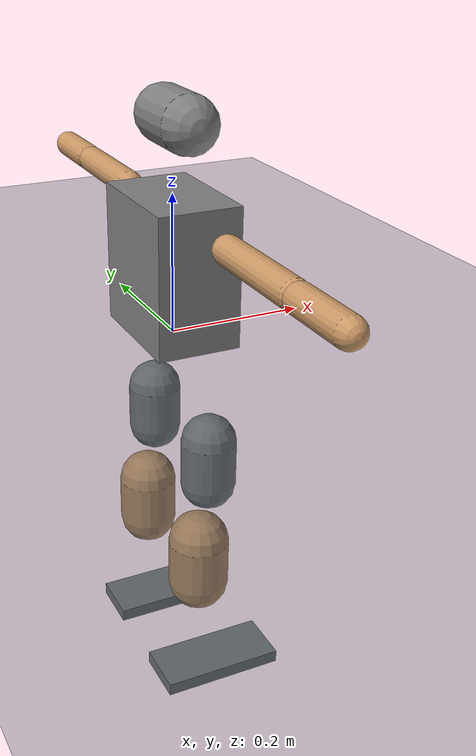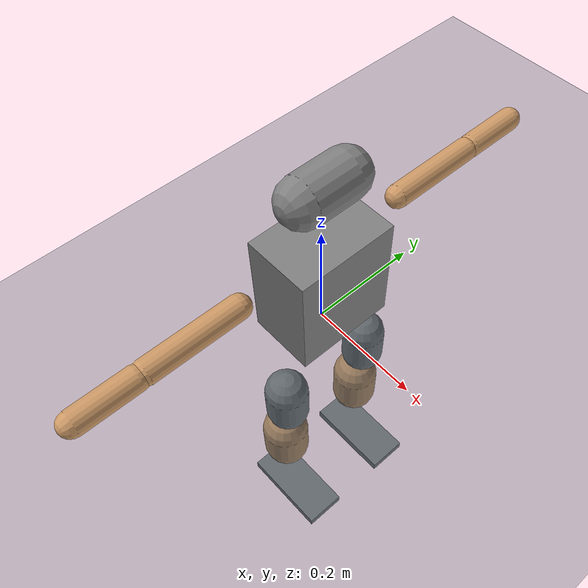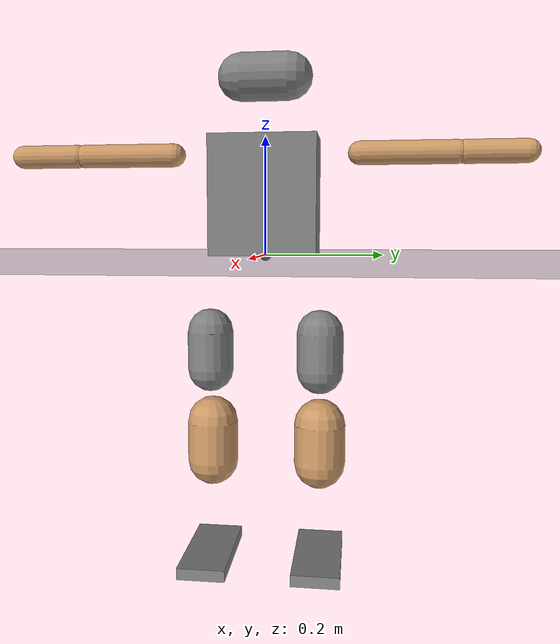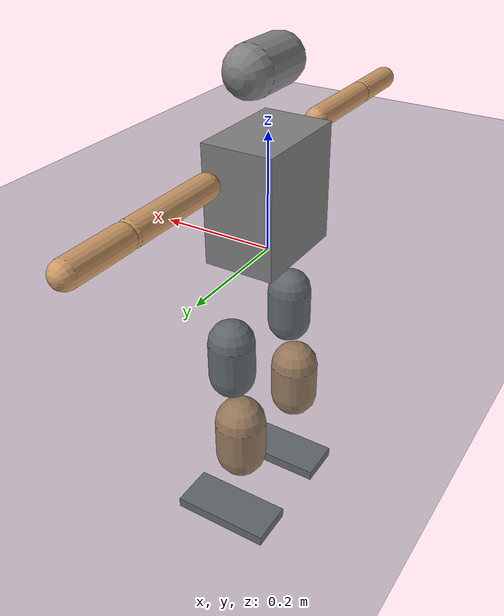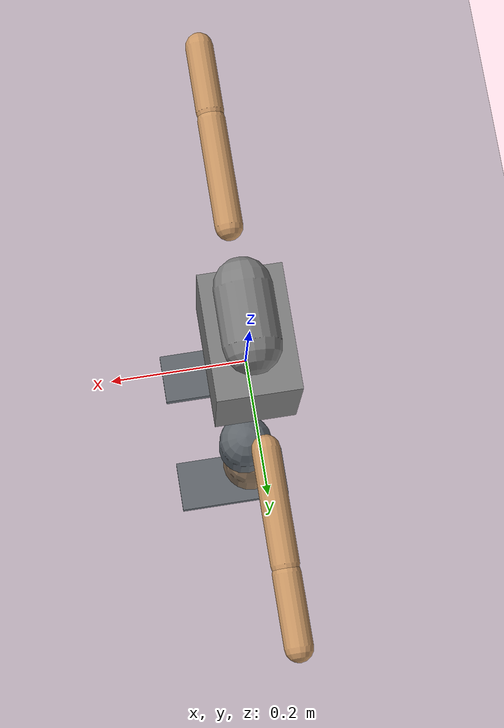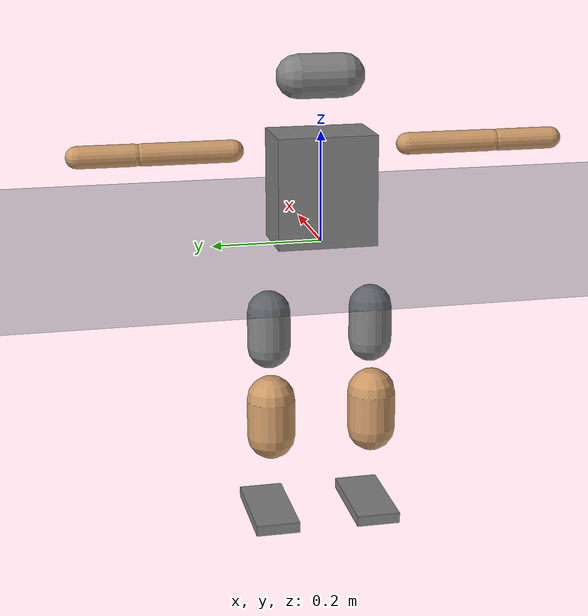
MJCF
<mujoco model="K1">
  <compiler angle="radian" meshdir="meshes"/>

  <statistic center="0 0 0.1" extent="0.8"/>

  <option iterations="5" ls_iterations="8" timestep=".002" integrator="RK4">
    <flag eulerdamp="disable"/>
  </option>

  <visual>
    <global offheight="1600" offwidth="1600"/>
  </visual>

  <default>
    <material specular="0" shininess="0.25"/>

    <default class="K1">
      <default class="visual">
        <geom group="2" type="mesh"/>
      </default>

      <default class="collision">
        <geom contype="1" conaffinity="1" group="1"/>
      </default>

      <default class="foot_collision">
        <geom type="box" pos="0.0268 0 -0.034" size="0.0925 0.041 0.01" />
      </default>

      <default class="head_2_collition">
        <geom type="capsule" size="0.04 0.04" pos="0 0 0.05" xyaxes="1 0 0 0 0 1" />
      </default>

      <default class="knee_yaw_collition">
        <geom type="capsule" size="0.04 0.033" pos="0 0 -0.03" xyaxes="1 0 0 0 1 0" />
      </default>

      <default class="knee_pitch_collition">
        <geom type="capsule" size="0.045 0.035" pos="0 0 -0.08" xyaxes="1 0 0 0 1 0" rgba="0.8 0.6 0.4 1" />
      </default>

      <joint frictionloss="0.1" solimplimit="0 0.99 0.01" solreflimit=".008 1"/>

      <default class="head">
        <default class="head_yaw">
          <joint axis="0 0 1" range="-3.0892 2.6704" actuatorfrcrange="-25 25" armature="0.003609725"/>
        </default>
        <default class="head_pitch">
          <joint axis="0 1 0" actuatorfrcrange="-25 25" armature="0.003609725"/>
        </default>
      </default>

      <default class="shoulder">
        <default class="shoulder_pitch">
          <joint axis="0 1 0" range="-3.0892 2.6704" actuatorfrcrange="-25 25" armature="0.003609725"/>
        </default>
        <default class="shoulder_roll">
          <joint axis="1 0 0" actuatorfrcrange="-25 25" armature="0.003609725"/>
        </default>
        <default class="shoulder_yaw">
          <joint axis="0 0 1" range="-2.618 2.618" actuatorfrcrange="-25 25" armature="0.003609725"/>
        </default>
      </default>
      <default class="elbow">
        <joint axis="0 1 0" range="-1.0472 2.0944" actuatorfrcrange="-25 25" armature="0.003609725"/>
      </default>

      <default class="hip">
        <default class="hip_pitch">
          <joint axis="0 1 0" range="-2.5307 2.8798" actuatorfrcrange="-88 88" armature="0.01017752004"/>
        </default>
        <default class="hip_roll">
          <joint axis="1 0 0" range="-0.5236 2.9671" actuatorfrcrange="-139 139" armature="0.025101925"/>
        </default>
        <default class="hip_yaw">
          <joint axis="0 0 1" range="-2.7576 2.7576" actuatorfrcrange="-88 88" armature="0.01017752004"/>
        </default>
      </default>
      <default class="knee">
        <joint axis="0 1 0" range="-0.087267 2.8798" actuatorfrcrange="-139 139" armature="0.025101925"/>
      </default>
      <default class="ankle">
        <position kp="20" kv="2"/>
        <default class="ankle_pitch">
          <joint axis="0 1 0" range="-0.87267 0.5236" actuatorfrcrange="-50 50" armature="0.00721945"/>
        </default>
        <default class="ankle_roll">
          <joint axis="1 0 0" range="-0.2618 0.2618" actuatorfrcrange="-50 50" armature="0.00721945"/>
        </default>
      </default>

    </default>
  </default>

  <asset>
    <texture type="skybox" builtin="gradient" rgb1="0.3 0.5 0.7" rgb2="0 0 0" width="512" height="512"/>
    <texture name="texplane" type="2d" builtin="checker" rgb1=".2 .3 .4" rgb2=".1 0.15 0.2" width="512" height="512" mark="cross" markrgb=".8 .8 .8"/>
    <material name="matplane" reflectance="0.3" texture="texplane" texrepeat="1 1" texuniform="true"/>

    <mesh name="Trunk" file="Trunk.STL"/>
    <mesh name="Head_1" file="Head_1.STL"/>
    <mesh name="Head_2" file="Head_2_mjx.STL"/>
    <mesh name="Left_Arm_1" file="Left_Arm_1.STL"/>
    <mesh name="Left_Arm_2" file="Left_Arm_2_mjx.STL"/>
    <mesh name="Left_Arm_3" file="Left_Arm_3_mjx.STL"/>
    <mesh name="Left_Arm_4" file="Left_Arm_4_mjx.STL"/>
    <mesh name="Right_Arm_1" file="Right_Arm_1.STL"/>
    <mesh name="Right_Arm_2" file="Right_Arm_2_mjx.STL"/>
    <mesh name="Right_Arm_3" file="Right_Arm_3_mjx.STL"/>
    <mesh name="Right_Arm_4" file="Right_Arm_4_mjx.STL"/>
    <mesh name="Left_Hip_Pitch" file="Left_Hip_Pitch_mjx.STL"/>
    <mesh name="Left_Hip_Roll" file="Left_Hip_Roll_mjx.STL"/>
    <mesh name="Left_Hip_Yaw" file="Left_Hip_Yaw_mjx.STL"/>
    <mesh name="Left_Shank" file="Left_Shank_mjx.STL"/>
    <mesh name="Left_Ankle_Cross" file="Left_Ankle_Cross.STL"/>
    <mesh name="Left_Foot" file="Left_Foot_mjx.STL"/>
    <mesh name="Right_Hip_Pitch" file="Right_Hip_Pitch_mjx.STL"/>
    <mesh name="Right_Hip_Roll" file="Right_Hip_Roll_mjx.STL"/>
    <mesh name="Right_Hip_Yaw" file="Right_Hip_Yaw_mjx.STL"/>
    <mesh name="Right_Shank" file="Right_Shank_mjx.STL"/>
    <mesh name="Right_Ankle_Cross" file="Right_Ankle_Cross.STL"/>
    <mesh name="Right_Foot" file="Right_Foot_mjx.STL"/>
  </asset>

  <worldbody>
    <light directional="true" diffuse=".4 .4 .4" specular="0.1 0.1 0.1" pos="0 0 5.0" dir="0 0 -1" castshadow="false" />
    <light directional="true" diffuse=".6 .6 .6" specular="0.2 0.2 0.2" pos="0 0 4" dir="0 0 -1" />
    <geom name="ground" type="plane" pos="0 0 0" size="0 0 1" material="matplane" condim="3"/>

    <body name="Trunk">
      <site name='imu' size='0.01' pos='0.0 0.0 0.0' />
      <inertial pos="-0.0043392 -0.00065534 0.065686" quat="0.999896 -0.00411546 0.0137413 -0.00168959" mass="6.3921" diaginertia="0.0962166 0.0895166 0.0201248"/>
      <joint name="world_joint" type="free"/>

      <!-- 简化几何体，移除重复的mesh引用 -->
      <geom name="trunk" size="0.06 0.09 0.1" pos="0 0 0.1" type="box" class="collision"/>

      <!-- 头部 -->
      <body name="Head_1" pos="0.0056 0 0.2149">
        <inertial pos="-0.00069503 -0.00038527 0.031688" quat="0.993827 -0.00957801 0.00894723 -0.110168" mass="0.29729" diaginertia="0.000429546 0.000420659 0.000125795"/>
        <joint name="Head_yaw" axis="0 0 1" range="-1 1" armature="0.01" />
        <body name="Head_2" pos="0 0 0.033">
          <inertial pos="0.011042 -0.00092871 0.080698" quat="0.996402 -0.00118413 -0.0779414 -0.0332651" mass="0.61387" diaginertia="0.00603249 0.00577511 0.0017024"/>
          <joint name="Head_pitch" axis="0 1 0" range="-0.349 0.855" armature="0.01" />
          <geom name="head_pitch" class="head_2_collition"/>
        </body>
      </body>

      <!-- 左臂 -->
      <body name="Left_Arm_1" pos="0 0.077 0.1845">
        <inertial pos="-0.002701 0.062383 -0.011965" quat="0.578658 0.689818 -0.347436 0.261905" mass="0.45628" diaginertia="0.00223871 0.00217107 0.000254225"/>
        <joint name="Left_Shoulder_Pitch" axis="0 1 0" range="-3.316 1.22" armature="0.01" />
        <body name="Left_Arm_2" pos="0.0025 0.068 -0.0135">
          <inertial pos="0.01729 0.018221 -4.329e-05" quat="0.413453 0.573635 -0.413453 0.573635" mass="0.084303" diaginertia="0.000113 9.5e-05 6.5e-05"/>
          <joint name="Left_Shoulder_Roll" axis="1 0 0" range="-1.74 1.57" armature="0.01" />
          <body name="Left_Arm_3" pos="0 0.044428 0">
            <inertial pos="-0.0003979 0.072617 -0.00066218" quat="0.679502 0.689551 0.177403 -0.176989" mass="0.76208" diaginertia="0.00606947 0.00606767 0.000385851"/>
            <joint name="Left_Elbow_Pitch" axis="0 1 0" range="-2.27 2.27" armature="0.01" />
            <geom name="left_arm_3" type="capsule" size="0.02 0.08" pos="0 0.05 0" xyaxes="1 0 0 0 0 1" rgba="0.8 0.6 0.4 1" class="collision" />
            <body name="left_hand_link" pos="0 0.1215 0">
              <inertial pos="-0.0015751 0.084637 0.0087033" quat="0.712106 0.700961 0.0264125 -0.0293496" mass="0.16796" diaginertia="0.00205619 0.00202933 8.1482e-05"/>
              <joint name="Left_Elbow_Yaw" axis="0 0 1" range="-2.44 0" armature="0.01" />
              <geom name="left_arm_4" type="capsule" size="0.02 0.05" pos="0 0.07 0" xyaxes="1 0 0 0 0 1" rgba="0.8 0.6 0.4 1" class="collision" />
            </body>
          </body>
        </body>
      </body>

      <!-- 右臂 -->
      <body name="Right_Arm_1" pos="0 -0.077 0.1845">
        <inertial pos="-0.0026302 -0.06251 -0.01199" quat="0.689302 0.577958 -0.263425 0.348475" mass="0.45669" diaginertia="0.00224439 0.00217742 0.000255199"/>
        <joint name="Right_Shoulder_Pitch" axis="0 1 0" range="-3.316 1.22" armature="0.01" />
        <body name="Right_Arm_2" pos="0.0025 -0.068 -0.0135">
          <inertial pos="0.017229 -0.018428 4.3784e-05" quat="0.573635 0.413453 -0.573635 0.413453" mass="0.083353" diaginertia="0.000113 9.5e-05 6.5e-05"/>
          <joint name="Right_Shoulder_Roll" axis="1 0 0" range="-1.57 1.74" armature="0.01" />
          <body name="Right_Arm_3" pos="0 -0.044428 0">
            <inertial pos="-0.00039919 -0.072601 -0.00065629" quat="0.689551 0.679502 0.176989 -0.177403" mass="0.76234" diaginertia="0.00607047 0.00606867 0.000386851"/>
            <joint name="Right_Elbow_Pitch" axis="0 1 0" range="-2.27 2.27" armature="0.01" />
            <geom name="right_arm_3" type="capsule" size="0.02 0.08" pos="0 -0.05 0" xyaxes="1 0 0 0 0 1" rgba="0.8 0.6 0.4 1" class="collision" />
            <body name="right_hand_link" pos="0 -0.1215 0">
              <inertial pos="-0.0015177 -0.084536 0.0086733" quat="0.700925 0.712091 0.0296562 -0.0274245" mass="0.16828" diaginertia="0.00205618 0.00203032 8.14943e-05"/>
              <joint name="Right_Elbow_Yaw" axis="0 0 1" range="0 2.44" armature="0.01" />
              <geom name="right_arm_4" type="capsule" size="0.02 0.05" pos="0 -0.07 0" xyaxes="1 0 0 0 0 1" rgba="0.8 0.6 0.4 1" class="collision" />
            </body>
          </body>
        </body>
      </body>

      <!-- 左腿 -->
      <body name="Left_Hip_Pitch" pos="0 0.096 -0.062">
        <inertial pos="-0.010093 -0.0019934 -0.024713" quat="0.704206 -0.178798 -0.198986 0.65767" mass="0.64068" diaginertia="0.000987585 0.000880963 0.000503452"/>
        <joint name="Left_Hip_Pitch" axis="0 1 0" range="-3 2.21" armature="0.01" />
        <body name="Left_Hip_Roll" pos="0 0 -0.026">
          <inertial pos="0.023585 4.9e-05 -0.024996" quat="0.677218 0.203412 0.203412 0.677218" mass="0.127825" diaginertia="0.000262 0.000222694 0.000118306"/>
          <joint name="Left_Hip_Roll" axis="1 0 0" range="-0.4 1.57" armature="0.01" />
          <body name="Left_Hip_Yaw" pos="0.012 0 -0.0485">
            <inertial pos="-0.0084744 -0.0040494 -0.087906" quat="0.857995 -0.00590801 -0.0582713 0.510308" mass="1.5591" diaginertia="0.0162716 0.0158564 0.00134895"/>
            <joint name="Left_Hip_Yaw" axis="0 0 1" range="-1 1" armature="0.01" />
            <geom name="left_hip_yaw" class="knee_yaw_collition"/>
            <body name="Left_Shank" pos="-0.014 0 -0.117">
              <inertial pos="-0.00081083 0.0031459 -0.10922" quat="0.940563 -0.00388906 -0.00385774 0.339574" mass="1.48333" diaginertia="0.0237114 0.0236423 0.00123731"/>
              <joint name="Left_Knee_Pitch" axis="0 1 0" range="0 2.23" armature="0.01" />
              <geom name="left_knee_pitch" class="knee_pitch_collition"/>
              <body name="Left_Ankle_Cross" pos="0.00019706 0.0002 -0.24519">
                <inertial pos="0 0 0" quat="0.5 0.5 0.5 0.5" mass="0.038836" diaginertia="4e-06 4e-06 2e-06"/>
                <joint name="Left_Ankle_Pitch" axis="0 1 0" range="-0.87 0.345" armature="0.01" />
                <body name="left_foot_link">
                  <inertial pos="7.3589e-05 -4.1141e-06 -0.0075032" quat="0 0.674609 0 0.738175" mass="0.38305" diaginertia="0.000789779 0.000741 0.000197221"/>
                  <joint name="Left_Ankle_Roll" axis="1 0 0" range="-0.345 0.345" armature="0.01" />
                  <geom name="left_foot" class="foot_collision"/>
                </body>
              </body>
            </body>
          </body>
        </body>
      </body>

      <!-- 右腿 -->
      <body name="Right_Hip_Pitch" pos="0 -0.096 -0.062">
        <inertial pos="-0.010065 0.0020086 -0.024739" quat="0.656712 -0.199052 -0.176963 0.705544" mass="0.6413" diaginertia="0.000988671 0.000880749 0.00050458"/>
        <joint name="Right_Hip_Pitch" axis="0 1 0" range="-3 2.21" armature="0.01" />
        <body name="Right_Hip_Roll" pos="0 0 -0.026">
          <inertial pos="0.023585 4.9e-05 -0.024996" quat="0.677218 0.203412 0.203412 0.677218" mass="0.127825" diaginertia="0.000262 0.000222694 0.000118306"/>
          <joint name="Right_Hip_Roll" axis="1 0 0" range="-1.57 0.4" armature="0.01" />
          <body name="Right_Hip_Yaw" pos="0.012 0 -0.0485">
            <inertial pos="-0.008475 0.0040392 -0.087906" quat="0.510308 -0.0582713 -0.00590801 0.857995" mass="1.5592" diaginertia="0.0162716 0.0158564 0.00134895"/>
            <joint name="Right_Hip_Yaw" axis="0 0 1" range="-1 1" armature="0.01" />
            <geom name="right_hip_yaw" class="knee_yaw_collition"/>
            <body name="Right_Shank" pos="-0.014 0 -0.117">
              <inertial pos="-0.000805 -0.003146 -0.109215" quat="0.940537 0.00388176 -0.00383651 -0.339646" mass="1.48334" diaginertia="0.0237114 0.0236423 0.00123733"/>
              <joint name="Right_Knee_Pitch" axis="0 1 0" range="0 2.23" armature="0.01" />
              <geom name="right_knee_pitch" class="knee_pitch_collition"/>
              <body name="Right_Ankle_Cross" pos="0.00019706 -0.0002 -0.24519">
                <inertial pos="0 0 0" quat="0.5 0.5 0.5 0.5" mass="0.038836" diaginertia="4e-06 4e-06 2e-06"/>
                <joint name="Right_Ankle_Pitch" axis="0 1 0" range="-0.87 0.345" armature="0.01" />
                <body name="right_foot_link">
                  <inertial pos="-0.000178 -2e-06 -0.007291" quat="0 0.674109 0 0.738632" mass="0.38637" diaginertia="0.000794943 0.000745 0.000200057"/>
                  <joint name="Right_Ankle_Roll" axis="1 0 0" range="-0.345 0.345" armature="0.01" />
                  <geom name="right_foot" class="foot_collision"/>
                </body>
              </body>
            </body>
          </body>
        </body>
      </body>

    </body>
  </worldbody>

  <actuator>
    <position name="Head_yaw" joint="Head_yaw" forcerange="-7.0 7.0" kp="20.0" kv="2.0" />
    <position name="Head_pitch" joint="Head_pitch" forcerange="-7.0 7.0" kp="20.0" kv="2.0" />

    <position name="Left_Shoulder_Pitch" joint="Left_Shoulder_Pitch" forcerange="-10.0 10.0" kp="20.0" kv="2.0" />
    <position name="Left_Shoulder_Roll" joint="Left_Shoulder_Roll" forcerange="-10.0 10.0" kp="20.0" kv="2.0" />
    <position name="Left_Elbow_Pitch" joint="Left_Elbow_Pitch" forcerange="-10.0 10.0" kp="20.0" kv="2.0" />
    <position name="Left_Elbow_Yaw" joint="Left_Elbow_Yaw" forcerange="-10.0 10.0" kp="20.0" kv="2.0" />

    <position name="Right_Shoulder_Pitch" joint="Right_Shoulder_Pitch" forcerange="-10.0 10.0" kp="20.0" kv="2.0" />
    <position name="Right_Shoulder_Roll" joint="Right_Shoulder_Roll" forcerange="-10.0 10.0" kp="20.0" kv="2.0" />
    <position name="Right_Elbow_Pitch" joint="Right_Elbow_Pitch" forcerange="-10.0 10.0" kp="20.0" kv="2.0" />
    <position name="Right_Elbow_Yaw" joint="Right_Elbow_Yaw" forcerange="-10.0 10.0" kp="20.0" kv="2.0" />

    <position name="Left_Hip_Pitch" joint="Left_Hip_Pitch" forcerange="-35.0 35.0" kp="100.0" kv="2.0" />
    <position name="Left_Hip_Roll" joint="Left_Hip_Roll" forcerange="-25.0 25.0" kp="100.0" kv="2.0" />
    <position name="Left_Hip_Yaw" joint="Left_Hip_Yaw" forcerange="-25.0 25.0" kp="100.0" kv="2.0" />
    <position name="Left_Knee_Pitch" joint="Left_Knee_Pitch" forcerange="-50.0 50.0" kp="100.0" kv="2.0" />
    <position name="Left_Ankle_Pitch" joint="Left_Ankle_Pitch" forcerange="-24.0 24.0" kp="50.0" kv="1.0" />
    <position name="Left_Ankle_Roll" joint="Left_Ankle_Roll" forcerange="-24.0 24.0" kp="50.0" kv="1.0" />

    <position name="Right_Hip_Pitch" joint="Right_Hip_Pitch" forcerange="-35.0 35.0" kp="100.0" kv="2.0" />
    <position name="Right_Hip_Roll" joint="Right_Hip_Roll" forcerange="-25.0 25.0" kp="100.0" kv="2.0" />
    <position name="Right_Hip_Yaw" joint="Right_Hip_Yaw" forcerange="-25.0 25.0" kp="100.0" kv="2.0" />
    <position name="Right_Knee_Pitch" joint="Right_Knee_Pitch" forcerange="-50.0 50.0" kp="100.0" kv="2.0" />
    <position name="Right_Ankle_Pitch" joint="Right_Ankle_Pitch" forcerange="-24.0 24.0" kp="50.0" kv="1.0" />
    <position name="Right_Ankle_Roll" joint="Right_Ankle_Roll" forcerange="-24.0 24.0" kp="50.0" kv="1.0" />
  </actuator>

  <sensor>
    <framequat name="orientation" objtype="site" noise="0.001" objname="imu" />
    <gyro name="angular-velocity" site="imu" noise="0.005" />
    <velocimeter name="velocity" site="imu" noise="0.005" />
  </sensor>

  <contact>
    <!-- head - floor -->
    <pair name="head_pitch_floor" geom1="head_pitch" geom2="ground" condim="3"/>

    <!-- left foot - floor -->
    <pair name="left_foot_floor" geom1="left_foot" geom2="ground" condim="3" solref="0.008 1" friction="1 1" />
    <pair name="left_foot_body" geom1="left_foot" geom2="trunk" condim="1"/>
    <!-- right foot - floor -->
    <pair name="right_foot_floor" geom1="right_foot" geom2="ground" condim="3" solref="0.008 1" friction="1 1" />
    <pair name="right_foot_body" geom1="right_foot" geom2="trunk" condim="1"/>
    <!-- arm - floor -->
    <pair name="left_arm_3_floor" geom1="left_arm_3" geom2="ground" condim="3"/>
    <pair name="left_arm_4_floor" geom1="left_arm_4" geom2="ground" condim="3"/>
    <pair name="right_arm_3_floor" geom1="right_arm_3" geom2="ground" condim="3"/>
    <pair name="right_arm_4_floor" geom1="right_arm_4" geom2="ground" condim="3"/>
    <!-- leg - floor -->
    <pair name="left_hip_yaw_floor" geom1="left_hip_yaw" geom2="ground" condim="3"/>
    <pair name="left_knee_pitch_floor" geom1="left_knee_pitch" geom2="ground" condim="3"/>

    <pair name="right_hip_yaw_floor" geom1="right_hip_yaw" geom2="ground" condim="3"/>
    <pair name="right_knee_pitch_floor" geom1="right_knee_pitch" geom2="ground" condim="3"/>
    <!-- foot - foot -->
    <pair name="left_foot_right_foot" geom1="left_foot" geom2="right_foot" condim="1"/>
    <!-- torso - floor -->
    <pair name="trunk_floor" geom1="trunk" geom2="ground" condim="3"/>
  </contact>

  <keyframe>
    <key name="home"
      qpos="
        0 0 0.6
        1 0 0 0
        0.0 0.0
        0.2 -1.35 0 -0.5
        0.2  1.35 0  0.5
        -0.15 0 0 0.3 -0.15 0.
        -0.15 0 0 0.3 -0.15 0."
      ctrl="
        0 0
        0 0 0 0
        0 0 0 0
        0 0 0 0 0 0
        0 0 0 0 0 0"
    />
  </keyframe>

</mujoco>
